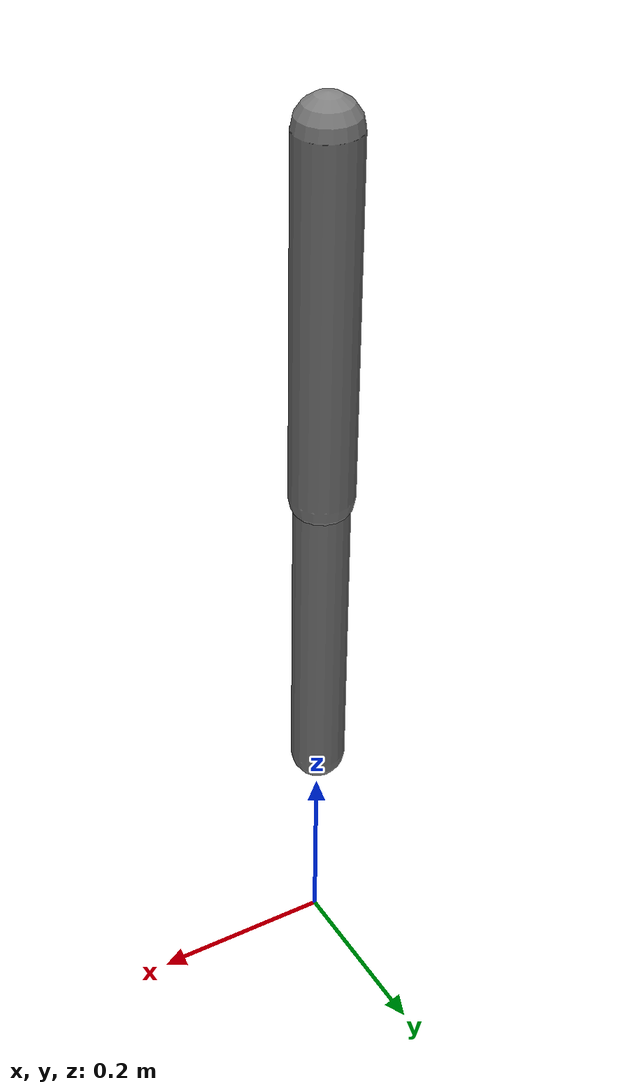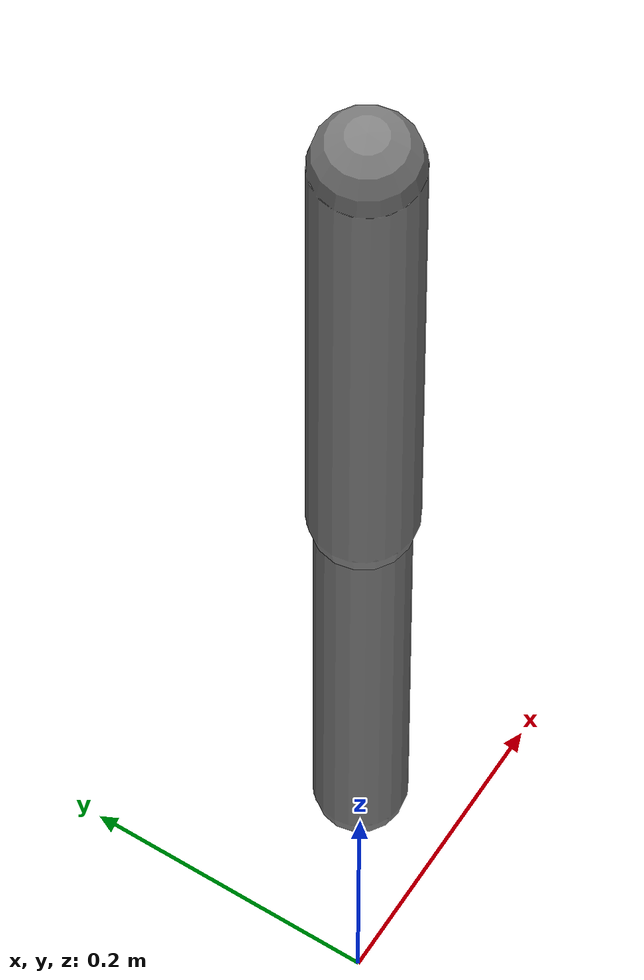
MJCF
<mujoco model="tendon_coupling">
  <compiler angle="radian"/>
  <option timestep="0.001"/>
  <worldbody>
    <body pos="0 0 1">
      <joint name="joint1" axis="0 1 0" damping=".1"/>
      <geom type="capsule" fromto="0 0 0 0 0 -.4" size=".035" mass="1"/>
      <body pos="0 0 -.4">
        <joint name="joint2" axis="0 1 0" damping=".1"/>
        <geom type="capsule" fromto="0 0 0 0 0 -.35" size=".03" mass=".7"/>
      </body>
    </body>
  </worldbody>
  <tendon>
    <fixed name="differential" limited="true" range="-.8 .8" stiffness="20" damping="1">
      <joint joint="joint1" coef="1"/><joint joint="joint2" coef="-1"/>
    </fixed>
  </tendon>
  <actuator><motor name="tendon_motor" tendon="differential" gear="1"/></actuator>
  <sensor><tendonpos name="differential_position" tendon="differential"/><tendonvel name="differential_velocity" tendon="differential"/></sensor>
</mujoco>
